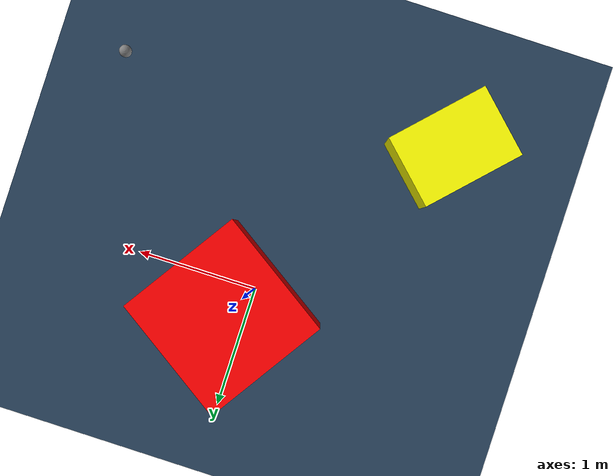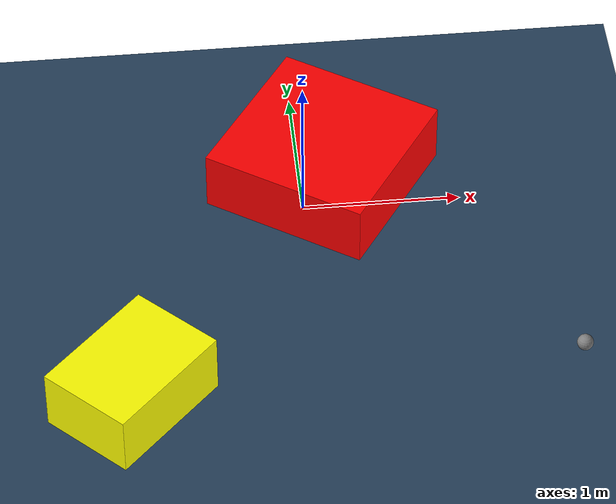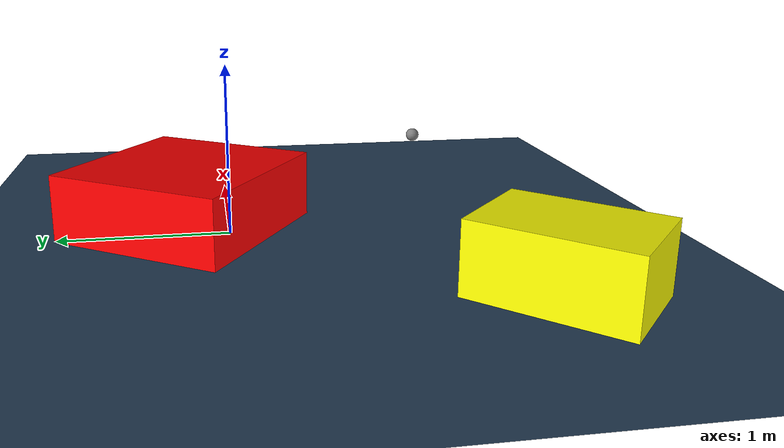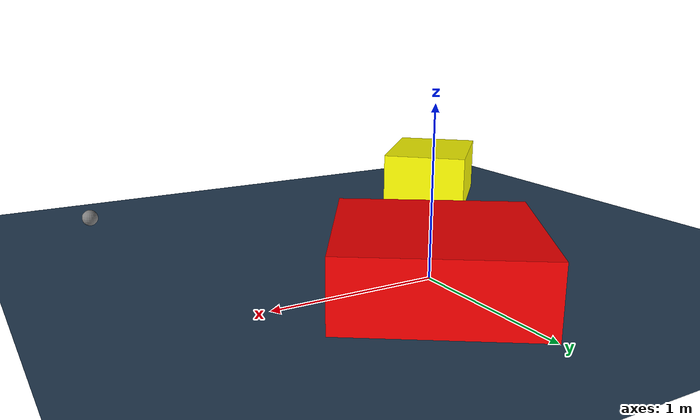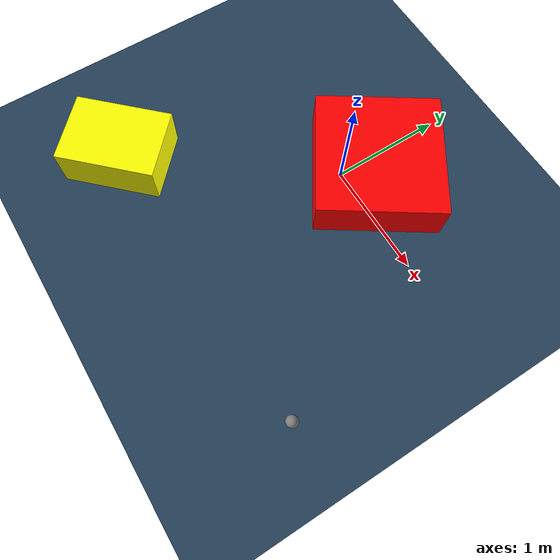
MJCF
<?xml version="1.0" ?>
<mujoco model="generated_environment">
  <option timestep="0.01" integrator="RK4" cone="elliptic"/>
  <default>
    <geom density="1"/>
  </default>
  <asset>
    <texture builtin="gradient" height="3072" rgb1="0.3 0.5 0.7" rgb2="0 0 0" type="skybox" width="512"/>
    <texture builtin="checker" height="300" mark="edge" markrgb="0.8 0.8 0.8" name="groundplane" rgb1="0.2 0.3 0.4" rgb2="0.1 0.2 0.3" type="2d" width="300"/>
    <material name="groundplane" reflectance="0.2" texrepeat="5 5" texture="groundplane" texuniform="true"/>
    <material name="robot" rgba="0.0 1.0 0.0 1"/>
  </asset>
  <worldbody>
    <light dir="0 0 -1" directional="true" pos="0 0 1.5"/>
    <geom condim="4" friction="1.0 0.005 0.001" material="groundplane" name="floor" size="0 0 0.05" type="plane"/>
    <body name="walls"/>
    <body name="robot">
      <joint name="joint_x" type="slide" pos="0 0 0" axis="1 0 0"/>
      <joint name="joint_y" type="slide" pos="0 0 0" axis="0 1 0"/>
      <geom name="robot" type="sphere" pos="1.5636042832554584 -1.5157041082399723 0.2" size="0.05" mass="5." friction="1.0 0.005 0.0001" condim="4"/>
      <site name="sensor_ball"/>
    </body>
    <body name="obstacle_1_movable">
      <geom name="obstacle_1_movable" condim="4" pos="-1.165020142271651 -1.5706410049603328 0.2" euler="0 0 136.26546120389418" friction="1.0 0.005 0.001" rgba="1 1 0 1" size="0.30442667752418606 0.4256558197416441 0.2" type="box" mass="0.1"/>
      <joint type="free"/>
    </body>
    <body name="obstacle_2_static">
      <geom name="obstacle_2_static" condim="4" pos="0.1499731124643473 0.25221562986461277 0.2" euler="0 0 326.65771092252254" friction="1.0 0.005 0.001" rgba="1 0 0 1" size="0.5466845407824035 0.5405245055484849 0.2" type="box"/>
    </body>
  </worldbody>
  <actuator>
    <motor name="actuator_x" joint="joint_x" gear="1" ctrlrange="-1 1"/>
    <motor name="actuator_y" joint="joint_y" gear="1" ctrlrange="-1 1"/>
  </actuator>
</mujoco>
